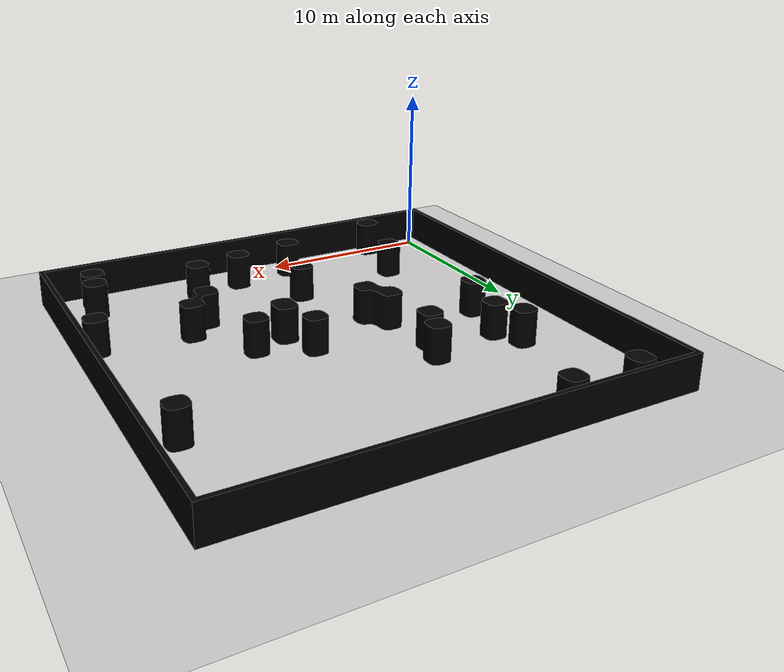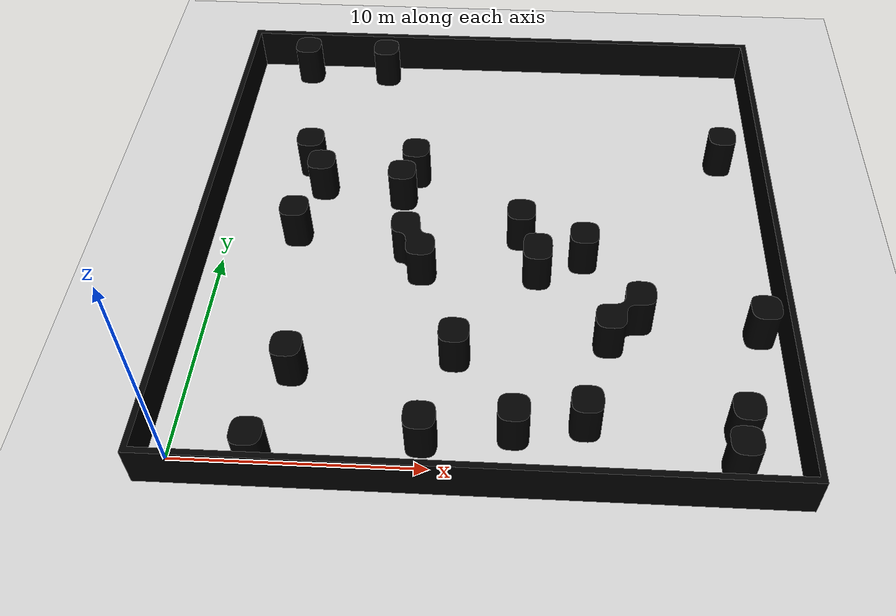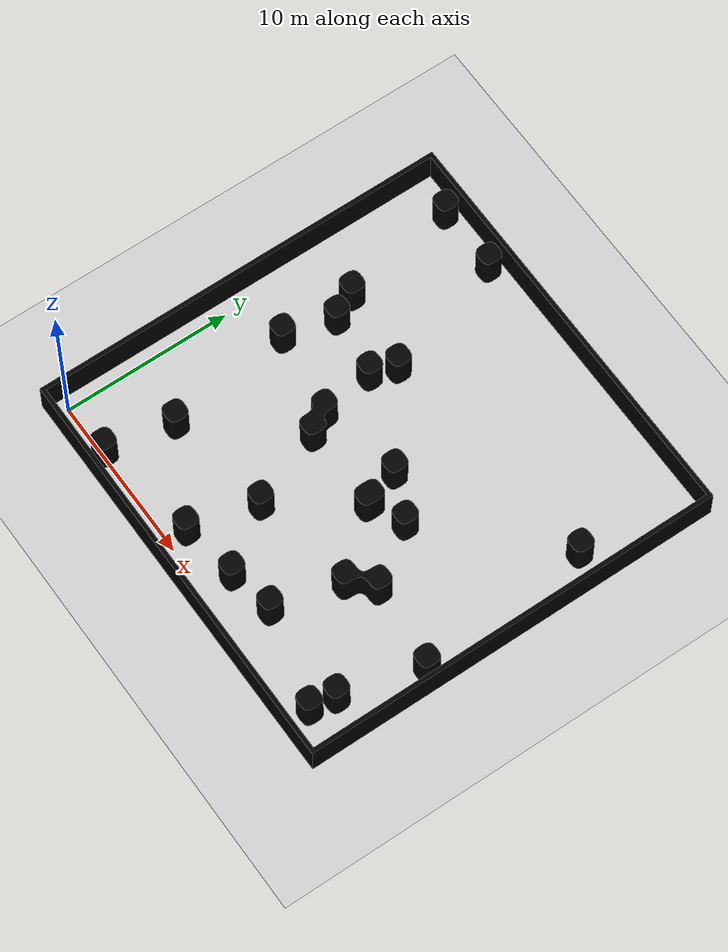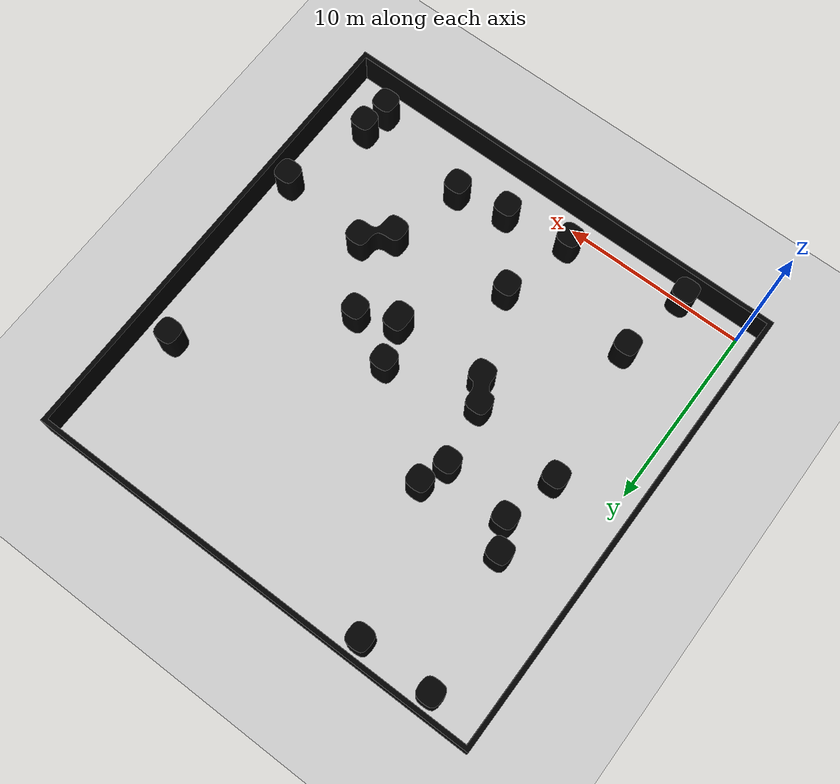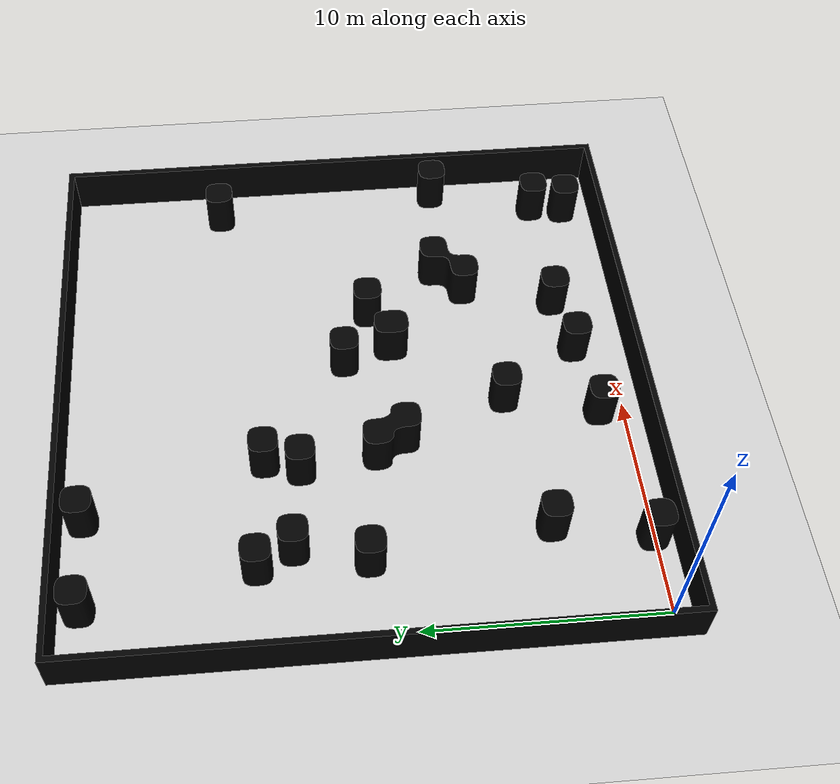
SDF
<sdf version="1.7">
 <world name="default">
  <model name="ground_plane">
   <static>1</static>
   <link name="link">
    <collision name="collision">
     <geometry><plane><normal>0 0 1</normal><size>100 100</size></plane></geometry>
     <surface><friction><ode><mu>100</mu><mu2>50</mu2></ode></friction></surface>
    </collision>
    <visual name="visual">
     <cast_shadows>0</cast_shadows>
     <geometry><plane><normal>0 0 1</normal><size>100 100</size></plane></geometry>
     <material>
      <script><uri>file://media/materials/scripts/gazebo.material</uri><name>Gazebo/Grey</name></script>
     </material>
    </visual>
   </link>
  </model>
  <light name="sun" type="directional">
   <pose>0 0 10 0 -0 0</pose>
   <diffuse>0.8 0.8 0.8 1</diffuse>
   <specular>0.2 0.2 0.2 1</specular>
   <attenuation>
    <range>1000</range>
    <constant>0.9</constant>
    <linear>0.01</linear>
    <quadratic>0.001</quadratic>
   </attenuation>
   <direction>-0.5 0.1 -0.9</direction>
   <spot><inner_angle>0</inner_angle><outer_angle>0</outer_angle><falloff>0</falloff></spot>
  </light>
  <scene><ambient>0 0 0 1</ambient><shadows>0</shadows><background>0.7 0.7 0.7 1</background></scene>
  <model name="my_mesh">
   <pose>-1.00405 -1.00887 0 0 -0 0</pose>
   <static>1</static>
   <link name="body">
    <visual name="visual">
     <pose>0 0 1 0 -0 0</pose>
     <geometry>
      <mesh><uri>/home/erm/Projects/herm_me5400_ws/src/gazebo_env/worlds/outdoor/worlds/map.dae</uri></mesh>
     </geometry>
    </visual>
    <collision name="collision1">
     <pose>0 0 1 0 -0 0</pose>
     <geometry>
      <mesh><uri>/home/erm/Projects/herm_me5400_ws/src/gazebo_env/worlds/outdoor/worlds/map.dae</uri></mesh>
     </geometry>
    </collision>
   </link>
  </model>
  <gravity>0 0 -9.8</gravity>
  <magnetic_field>6e-06 2.3e-05 -4.2e-05</magnetic_field>
  <atmosphere type="adiabatic"/>
  <physics type="ode">
   <max_step_size>0.001</max_step_size>
   <real_time_factor>1</real_time_factor>
   <real_time_update_rate>1000</real_time_update_rate>
  </physics>
  <spherical_coordinates>
   <surface_model>EARTH_WGS84</surface_model>
   <latitude_deg>0</latitude_deg>
   <longitude_deg>0</longitude_deg>
   <elevation>0</elevation>
   <heading_deg>0</heading_deg>
  </spherical_coordinates>
 </world>
</sdf>
